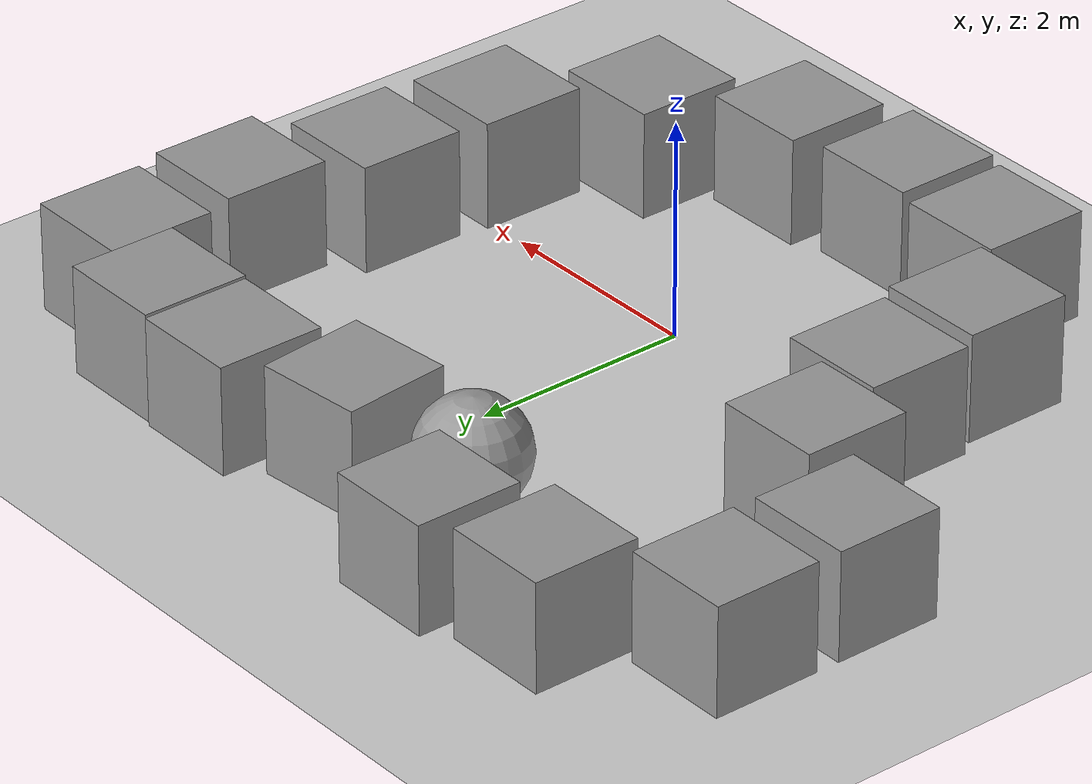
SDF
<sdf version="1.7">
 <world name="default">
  <light name="sun" type="directional">
   <pose>0 0 10 0 -0 0</pose>
   <diffuse>0.8 0.8 0.8 1</diffuse>
   <specular>0.2 0.2 0.2 1</specular>
   <attenuation>
    <range>1000</range>
    <constant>0.9</constant>
    <linear>0.01</linear>
    <quadratic>0.001</quadratic>
   </attenuation>
   <direction>-0.5 0.1 -0.9</direction>
   <spot><inner_angle>0</inner_angle><outer_angle>0</outer_angle><falloff>0</falloff></spot>
  </light>
  <model name="ground_plane">
   <static>1</static>
   <link name="link">
    <collision name="collision">
     <geometry><plane><normal>0 0 1</normal><size>100 100</size></plane></geometry>
     <surface><friction><ode><mu>100</mu><mu2>50</mu2></ode></friction></surface>
    </collision>
    <visual name="visual">
     <cast_shadows>0</cast_shadows>
     <geometry><plane><normal>0 0 1</normal><size>100 100</size></plane></geometry>
     <material>
      <script><uri>file://media/materials/scripts/gazebo.material</uri><name>Gazebo/Grey</name></script>
     </material>
    </visual>
   </link>
  </model>
  <gravity>0 0 -9.8</gravity>
  <magnetic_field>6e-06 2.3e-05 -4.2e-05</magnetic_field>
  <atmosphere type="adiabatic"/>
  <physics type="ode">
   <max_step_size>0.001</max_step_size>
   <real_time_factor>1</real_time_factor>
   <real_time_update_rate>1000</real_time_update_rate>
  </physics>
  <scene><ambient>0.4 0.4 0.4 1</ambient><background>0.7 0.7 0.7 1</background><shadows>1</shadows></scene>
  <audio><device>default</device></audio>
  <spherical_coordinates>
   <surface_model>EARTH_WGS84</surface_model>
   <latitude_deg>0</latitude_deg>
   <longitude_deg>0</longitude_deg>
   <elevation>0</elevation>
   <heading_deg>0</heading_deg>
  </spherical_coordinates>
  <model name="unit_box">
   <pose>-2.37853 -0.114195 0.499995 0 1e-05 0</pose>
   <link name="link">
    <inertial>
     <mass>1</mass>
     <inertia>
      <ixx>0.166667</ixx>
      <ixy>0</ixy>
      <ixz>0</ixz>
      <iyy>0.166667</iyy>
      <iyz>0</iyz>
      <izz>0.166667</izz>
     </inertia>
    </inertial>
    <collision name="collision"><geometry><box><size>1 1 1</size></box></geometry></collision>
    <visual name="visual">
     <geometry><box><size>1 1 1</size></box></geometry>
     <material>
      <script><name>Gazebo/Grey</name><uri>file://media/materials/scripts/gazebo.material</uri></script>
     </material>
    </visual>
   </link>
  </model>
  <model name="unit_box_0">
   <pose>-1.35441 -2.286 0.499995 -1e-05 -0 -0</pose>
   <link name="link">
    <inertial>
     <mass>1</mass>
     <inertia>
      <ixx>0.166667</ixx>
      <ixy>0</ixy>
      <ixz>0</ixz>
      <iyy>0.166667</iyy>
      <iyz>0</iyz>
      <izz>0.166667</izz>
     </inertia>
    </inertial>
    <collision name="collision"><geometry><box><size>1 1 1</size></box></geometry></collision>
    <visual name="visual">
     <geometry><box><size>1 1 1</size></box></geometry>
     <material>
      <script><name>Gazebo/Grey</name><uri>file://media/materials/scripts/gazebo.material</uri></script>
     </material>
    </visual>
   </link>
  </model>
  <model name="unit_box_1">
   <pose>-2.26957 -1.25528 0.499995 0 1e-05 0</pose>
   <link name="link">
    <inertial>
     <mass>1</mass>
     <inertia>
      <ixx>0.166667</ixx>
      <ixy>0</ixy>
      <ixz>0</ixz>
      <iyy>0.166667</iyy>
      <iyz>0</iyz>
      <izz>0.166667</izz>
     </inertia>
    </inertial>
    <collision name="collision"><geometry><box><size>1 1 1</size></box></geometry></collision>
    <visual name="visual">
     <geometry><box><size>1 1 1</size></box></geometry>
     <material>
      <script><name>Gazebo/Grey</name><uri>file://media/materials/scripts/gazebo.material</uri></script>
     </material>
    </visual>
   </link>
  </model>
  <model name="unit_box_2">
   <pose>-0.19858 -2.35484 0.499995 -1e-05 -0 -0</pose>
   <link name="link">
    <inertial>
     <mass>1</mass>
     <inertia>
      <ixx>0.166667</ixx>
      <ixy>0</ixy>
      <ixz>0</ixz>
      <iyy>0.166667</iyy>
      <iyz>0</iyz>
      <izz>0.166667</izz>
     </inertia>
    </inertial>
    <collision name="collision"><geometry><box><size>1 1 1</size></box></geometry></collision>
    <visual name="visual">
     <geometry><box><size>1 1 1</size></box></geometry>
     <material>
      <script><name>Gazebo/Grey</name><uri>file://media/materials/scripts/gazebo.material</uri></script>
     </material>
    </visual>
   </link>
  </model>
  <model name="unit_box_3">
   <pose>1.03856 -2.22938 0.499995 0 1e-05 0</pose>
   <link name="link">
    <inertial>
     <mass>1</mass>
     <inertia>
      <ixx>0.166667</ixx>
      <ixy>0</ixy>
      <ixz>0</ixz>
      <iyy>0.166667</iyy>
      <iyz>0</iyz>
      <izz>0.166667</izz>
     </inertia>
    </inertial>
    <collision name="collision"><geometry><box><size>1 1 1</size></box></geometry></collision>
    <visual name="visual">
     <geometry><box><size>1 1 1</size></box></geometry>
     <material>
      <script><name>Gazebo/Grey</name><uri>file://media/materials/scripts/gazebo.material</uri></script>
     </material>
    </visual>
   </link>
  </model>
  <model name="unit_box_4">
   <pose>2.16516 -1.55469 0.499995 -1e-05 -0 -0</pose>
   <link name="link">
    <inertial>
     <mass>1</mass>
     <inertia>
      <ixx>0.166667</ixx>
      <ixy>0</ixy>
      <ixz>0</ixz>
      <iyy>0.166667</iyy>
      <iyz>0</iyz>
      <izz>0.166667</izz>
     </inertia>
    </inertial>
    <collision name="collision"><geometry><box><size>1 1 1</size></box></geometry></collision>
    <visual name="visual">
     <geometry><box><size>1 1 1</size></box></geometry>
     <material>
      <script><name>Gazebo/Grey</name><uri>file://media/materials/scripts/gazebo.material</uri></script>
     </material>
    </visual>
   </link>
  </model>
  <model name="unit_box_5">
   <pose>2.86212 -0.429497 0.499995 0 1e-05 0</pose>
   <link name="link">
    <inertial>
     <mass>1</mass>
     <inertia>
      <ixx>0.166667</ixx>
      <ixy>0</ixy>
      <ixz>0</ixz>
      <iyy>0.166667</iyy>
      <iyz>0</iyz>
      <izz>0.166667</izz>
     </inertia>
    </inertial>
    <collision name="collision"><geometry><box><size>1 1 1</size></box></geometry></collision>
    <visual name="visual">
     <geometry><box><size>1 1 1</size></box></geometry>
     <material>
      <script><name>Gazebo/Grey</name><uri>file://media/materials/scripts/gazebo.material</uri></script>
     </material>
    </visual>
   </link>
  </model>
  <model name="unit_box_6">
   <pose>2.92008 0.822862 0.499995 -1e-05 -0 -0</pose>
   <link name="link">
    <inertial>
     <mass>1</mass>
     <inertia>
      <ixx>0.166667</ixx>
      <ixy>0</ixy>
      <ixz>0</ixz>
      <iyy>0.166667</iyy>
      <iyz>0</iyz>
      <izz>0.166667</izz>
     </inertia>
    </inertial>
    <collision name="collision"><geometry><box><size>1 1 1</size></box></geometry></collision>
    <visual name="visual">
     <geometry><box><size>1 1 1</size></box></geometry>
     <material>
      <script><name>Gazebo/Grey</name><uri>file://media/materials/scripts/gazebo.material</uri></script>
     </material>
    </visual>
   </link>
  </model>
  <model name="unit_box_7">
   <pose>-0.029028 3.33601 0.5 0 -0 0.099214</pose>
   <link name="link">
    <inertial>
     <mass>1</mass>
     <inertia>
      <ixx>0.166667</ixx>
      <ixy>0</ixy>
      <ixz>0</ixz>
      <iyy>0.166667</iyy>
      <iyz>0</iyz>
      <izz>0.166667</izz>
     </inertia>
    </inertial>
    <collision name="collision"><geometry><box><size>1 1 1</size></box></geometry></collision>
    <visual name="visual">
     <geometry><box><size>1 1 1</size></box></geometry>
     <material>
      <script><name>Gazebo/Grey</name><uri>file://media/materials/scripts/gazebo.material</uri></script>
     </material>
    </visual>
   </link>
  </model>
  <model name="unit_sphere">
   <pose>-0.995309 2.90874 0.5 0.004562 -0.007226 -0.062719</pose>
   <link name="link">
    <inertial>
     <mass>1</mass>
     <inertia><ixx>0.1</ixx><ixy>0</ixy><ixz>0</ixz><iyy>0.1</iyy><iyz>0</iyz><izz>0.1</izz></inertia>
    </inertial>
    <collision name="collision"><geometry><sphere><radius>0.5</radius></sphere></geometry></collision>
    <visual name="visual">
     <geometry><sphere><radius>0.5</radius></sphere></geometry>
     <material>
      <script><name>Gazebo/Grey</name><uri>file://media/materials/scripts/gazebo.material</uri></script>
     </material>
    </visual>
   </link>
  </model>
  <model name="unit_box_8">
   <pose>-2.81347 0.932182 0.499995 0 1e-05 0</pose>
   <link name="link">
    <inertial>
     <mass>1</mass>
     <inertia>
      <ixx>0.166667</ixx>
      <ixy>0</ixy>
      <ixz>0</ixz>
      <iyy>0.166667</iyy>
      <iyz>0</iyz>
      <izz>0.166667</izz>
     </inertia>
    </inertial>
    <collision name="collision"><geometry><box><size>1 1 1</size></box></geometry></collision>
    <visual name="visual">
     <geometry><box><size>1 1 1</size></box></geometry>
     <material>
      <script><name>Gazebo/Grey</name><uri>file://media/materials/scripts/gazebo.material</uri></script>
     </material>
    </visual>
   </link>
  </model>
  <model name="unit_box_9">
   <pose>1.10217 3.67599 0.499995 -1e-05 -0 -0</pose>
   <link name="link">
    <inertial>
     <mass>1</mass>
     <inertia>
      <ixx>0.166667</ixx>
      <ixy>0</ixy>
      <ixz>0</ixz>
      <iyy>0.166667</iyy>
      <iyz>0</iyz>
      <izz>0.166667</izz>
     </inertia>
    </inertial>
    <collision name="collision"><geometry><box><size>1 1 1</size></box></geometry></collision>
    <visual name="visual">
     <geometry><box><size>1 1 1</size></box></geometry>
     <material>
      <script><name>Gazebo/Grey</name><uri>file://media/materials/scripts/gazebo.material</uri></script>
     </material>
    </visual>
   </link>
  </model>
  <model name="unit_box_10">
   <pose>2.13864 3.64268 0.5 0 -0 -0.003962</pose>
   <link name="link">
    <inertial>
     <mass>1</mass>
     <inertia>
      <ixx>0.166667</ixx>
      <ixy>0</ixy>
      <ixz>0</ixz>
      <iyy>0.166667</iyy>
      <iyz>0</iyz>
      <izz>0.166667</izz>
     </inertia>
    </inertial>
    <collision name="collision"><geometry><box><size>1 1 1</size></box></geometry></collision>
    <visual name="visual">
     <geometry><box><size>1 1 1</size></box></geometry>
     <material>
      <script><name>Gazebo/Grey</name><uri>file://media/materials/scripts/gazebo.material</uri></script>
     </material>
    </visual>
   </link>
  </model>
  <model name="unit_box_11">
   <pose>3.22527 2.00325 0.499995 -1e-05 -0 -0</pose>
   <link name="link">
    <inertial>
     <mass>1</mass>
     <inertia>
      <ixx>0.166667</ixx>
      <ixy>0</ixy>
      <ixz>0</ixz>
      <iyy>0.166667</iyy>
      <iyz>0</iyz>
      <izz>0.166667</izz>
     </inertia>
    </inertial>
    <collision name="collision"><geometry><box><size>1 1 1</size></box></geometry></collision>
    <visual name="visual">
     <geometry><box><size>1 1 1</size></box></geometry>
     <material>
      <script><name>Gazebo/Grey</name><uri>file://media/materials/scripts/gazebo.material</uri></script>
     </material>
    </visual>
   </link>
  </model>
  <model name="unit_box_12">
   <pose>3.13708 3.24623 0.499995 -1e-05 -0 -0.003965</pose>
   <link name="link">
    <inertial>
     <mass>1</mass>
     <inertia>
      <ixx>0.166667</ixx>
      <ixy>0</ixy>
      <ixz>0</ixz>
      <iyy>0.166667</iyy>
      <iyz>0</iyz>
      <izz>0.166667</izz>
     </inertia>
    </inertial>
    <collision name="collision"><geometry><box><size>1 1 1</size></box></geometry></collision>
    <visual name="visual">
     <geometry><box><size>1 1 1</size></box></geometry>
     <material>
      <script><name>Gazebo/Grey</name><uri>file://media/materials/scripts/gazebo.material</uri></script>
     </material>
    </visual>
   </link>
  </model>
  <model name="unit_box_13">
   <pose>-1.714 3.91301 0.499995 -1e-05 -0 -0</pose>
   <link name="link">
    <inertial>
     <mass>1</mass>
     <inertia>
      <ixx>0.166667</ixx>
      <ixy>0</ixy>
      <ixz>0</ixz>
      <iyy>0.166667</iyy>
      <iyz>0</iyz>
      <izz>0.166667</izz>
     </inertia>
    </inertial>
    <collision name="collision"><geometry><box><size>1 1 1</size></box></geometry></collision>
    <visual name="visual">
     <geometry><box><size>1 1 1</size></box></geometry>
     <material>
      <script><name>Gazebo/Grey</name><uri>file://media/materials/scripts/gazebo.material</uri></script>
     </material>
    </visual>
   </link>
  </model>
  <model name="unit_box_14">
   <pose>-2.90302 3.72481 0.499995 0 1e-05 0</pose>
   <link name="link">
    <inertial>
     <mass>1</mass>
     <inertia>
      <ixx>0.166667</ixx>
      <ixy>0</ixy>
      <ixz>0</ixz>
      <iyy>0.166667</iyy>
      <iyz>0</iyz>
      <izz>0.166667</izz>
     </inertia>
    </inertial>
    <collision name="collision"><geometry><box><size>1 1 1</size></box></geometry></collision>
    <visual name="visual">
     <geometry><box><size>1 1 1</size></box></geometry>
     <material>
      <script><name>Gazebo/Grey</name><uri>file://media/materials/scripts/gazebo.material</uri></script>
     </material>
    </visual>
   </link>
  </model>
  <model name="unit_box_15">
   <pose>-4.02056 2.87907 0.499995 -1e-05 -0 0</pose>
   <link name="link">
    <inertial>
     <mass>1</mass>
     <inertia>
      <ixx>0.166667</ixx>
      <ixy>0</ixy>
      <ixz>0</ixz>
      <iyy>0.166667</iyy>
      <iyz>0</iyz>
      <izz>0.166667</izz>
     </inertia>
    </inertial>
    <collision name="collision"><geometry><box><size>1 1 1</size></box></geometry></collision>
    <visual name="visual">
     <geometry><box><size>1 1 1</size></box></geometry>
     <material>
      <script><name>Gazebo/Grey</name><uri>file://media/materials/scripts/gazebo.material</uri></script>
     </material>
    </visual>
   </link>
  </model>
  <model name="unit_box_16">
   <pose>-4.0233 1.66115 0.5 0 -0 0</pose>
   <link name="link">
    <inertial>
     <mass>1</mass>
     <inertia>
      <ixx>0.166667</ixx>
      <ixy>0</ixy>
      <ixz>0</ixz>
      <iyy>0.166667</iyy>
      <iyz>0</iyz>
      <izz>0.166667</izz>
     </inertia>
    </inertial>
    <collision name="collision"><geometry><box><size>1 1 1</size></box></geometry></collision>
    <visual name="visual">
     <geometry><box><size>1 1 1</size></box></geometry>
     <material>
      <script><name>Gazebo/Grey</name><uri>file://media/materials/scripts/gazebo.material</uri></script>
     </material>
    </visual>
   </link>
  </model>
 </world>
</sdf>
